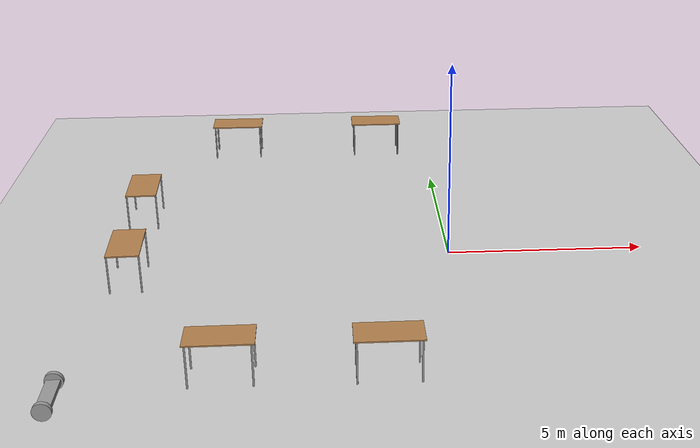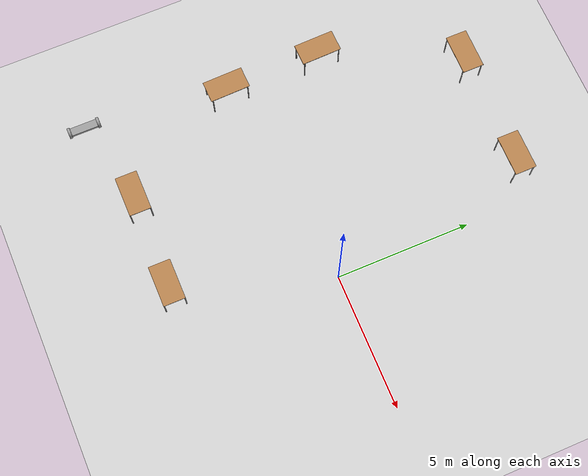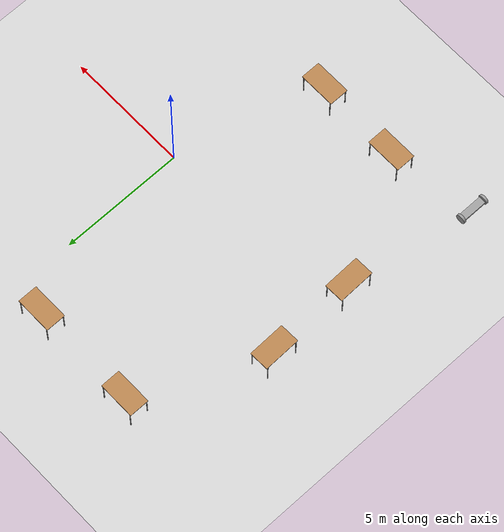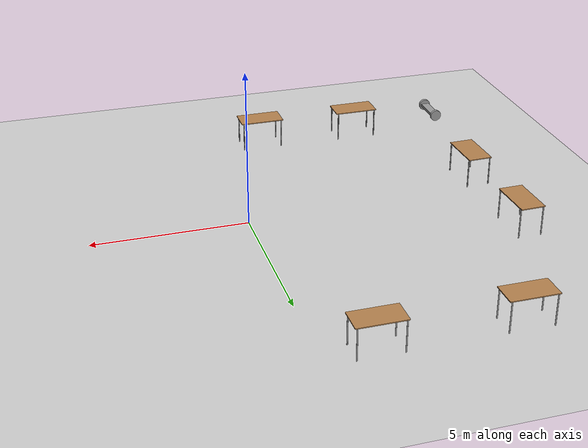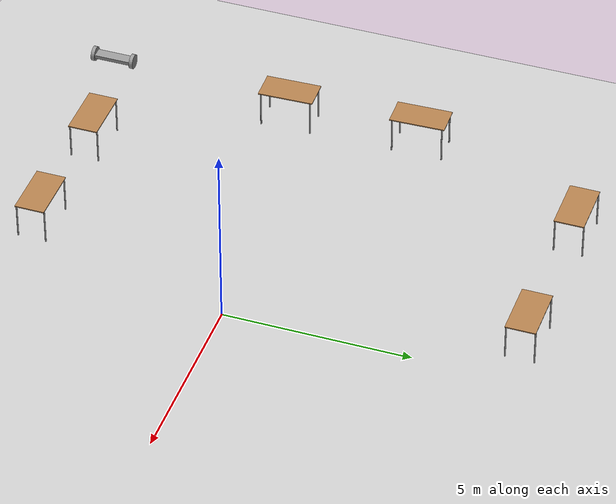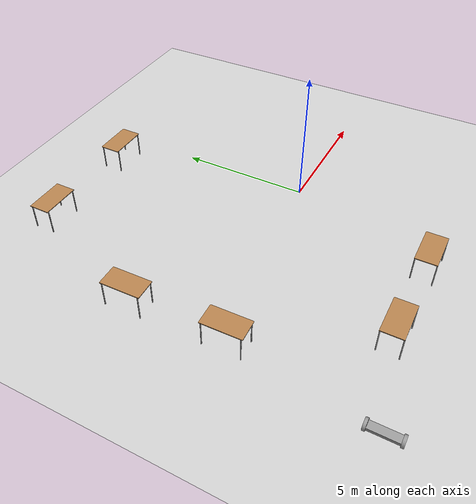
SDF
<sdf version="1.6">
 <world name="default">
  <model name="ground_plane">
   <static>1</static>
   <link name="link">
    <collision name="collision">
     <geometry><plane><normal>0 0 1</normal><size>100 100</size></plane></geometry>
     <surface>
      <contact><collide_bitmask>65535</collide_bitmask></contact>
      <friction><ode><mu>100</mu><mu2>50</mu2></ode></friction>
     </surface>
    </collision>
    <visual name="visual">
     <cast_shadows>0</cast_shadows>
     <geometry><plane><normal>0 0 1</normal><size>100 100</size></plane></geometry>
     <material>
      <script><uri>file://media/materials/scripts/gazebo.material</uri><name>Gazebo/Grey</name></script>
     </material>
    </visual>
   </link>
  </model>
  <model name="table_clone">
   <static>1</static>
   <link name="link">
    <collision name="surface">
     <pose>0 0 1 0 -0 0</pose>
     <geometry><box><size>1.5 0.8 0.03</size></box></geometry>
     <surface><friction><ode><mu>0.6</mu><mu2>0.6</mu2></ode></friction></surface>
    </collision>
    <visual name="visual1">
     <pose>0 0 1 0 -0 0</pose>
     <geometry><box><size>1.5 0.8 0.03</size></box></geometry>
     <material>
      <script><uri>file://media/materials/scripts/gazebo.material</uri><name>Gazebo/Wood</name></script>
     </material>
    </visual>
    <collision name="front_left_leg">
     <pose>0.68 0.38 0.5 0 -0 0</pose>
     <geometry><cylinder><radius>0.02</radius><length>1</length></cylinder></geometry>
    </collision>
    <visual name="front_left_leg">
     <pose>0.68 0.38 0.5 0 -0 0</pose>
     <geometry><cylinder><radius>0.02</radius><length>1</length></cylinder></geometry>
     <material>
      <script><uri>file://media/materials/scripts/gazebo.material</uri><name>Gazebo/Grey</name></script>
     </material>
    </visual>
    <collision name="front_right_leg">
     <pose>0.68 -0.38 0.5 0 -0 0</pose>
     <geometry><cylinder><radius>0.02</radius><length>1</length></cylinder></geometry>
    </collision>
    <visual name="front_right_leg">
     <pose>0.68 -0.38 0.5 0 -0 0</pose>
     <geometry><cylinder><radius>0.02</radius><length>1</length></cylinder></geometry>
     <material>
      <script><uri>file://media/materials/scripts/gazebo.material</uri><name>Gazebo/Grey</name></script>
     </material>
    </visual>
    <collision name="back_right_leg">
     <pose>-0.68 -0.38 0.5 0 -0 0</pose>
     <geometry><cylinder><radius>0.02</radius><length>1</length></cylinder></geometry>
    </collision>
    <visual name="back_right_leg">
     <pose>-0.68 -0.38 0.5 0 -0 0</pose>
     <geometry><cylinder><radius>0.02</radius><length>1</length></cylinder></geometry>
     <material>
      <script><uri>file://media/materials/scripts/gazebo.material</uri><name>Gazebo/Grey</name></script>
     </material>
    </visual>
    <collision name="back_left_leg">
     <pose>-0.68 0.38 0.5 0 -0 0</pose>
     <geometry><cylinder><radius>0.02</radius><length>1</length></cylinder></geometry>
    </collision>
    <visual name="back_left_leg">
     <pose>-0.68 0.38 0.5 0 -0 0</pose>
     <geometry><cylinder><radius>0.02</radius><length>1</length></cylinder></geometry>
     <material>
      <script><uri>file://media/materials/scripts/gazebo.material</uri><name>Gazebo/Grey</name></script>
     </material>
    </visual>
   </link>
   <pose>-1.86776 -5.62268 0 0 -0 0</pose>
  </model>
  <model name="table_clone_0">
   <static>1</static>
   <link name="link">
    <collision name="surface">
     <pose>0 0 1 0 -0 0</pose>
     <geometry><box><size>1.5 0.8 0.03</size></box></geometry>
     <surface><friction><ode><mu>0.6</mu><mu2>0.6</mu2></ode></friction></surface>
    </collision>
    <visual name="visual1">
     <pose>0 0 1 0 -0 0</pose>
     <geometry><box><size>1.5 0.8 0.03</size></box></geometry>
     <material>
      <script><uri>file://media/materials/scripts/gazebo.material</uri><name>Gazebo/Wood</name></script>
     </material>
    </visual>
    <collision name="front_left_leg">
     <pose>0.68 0.38 0.5 0 -0 0</pose>
     <geometry><cylinder><radius>0.02</radius><length>1</length></cylinder></geometry>
    </collision>
    <visual name="front_left_leg">
     <pose>0.68 0.38 0.5 0 -0 0</pose>
     <geometry><cylinder><radius>0.02</radius><length>1</length></cylinder></geometry>
     <material>
      <script><uri>file://media/materials/scripts/gazebo.material</uri><name>Gazebo/Grey</name></script>
     </material>
    </visual>
    <collision name="front_right_leg">
     <pose>0.68 -0.38 0.5 0 -0 0</pose>
     <geometry><cylinder><radius>0.02</radius><length>1</length></cylinder></geometry>
    </collision>
    <visual name="front_right_leg">
     <pose>0.68 -0.38 0.5 0 -0 0</pose>
     <geometry><cylinder><radius>0.02</radius><length>1</length></cylinder></geometry>
     <material>
      <script><uri>file://media/materials/scripts/gazebo.material</uri><name>Gazebo/Grey</name></script>
     </material>
    </visual>
    <collision name="back_right_leg">
     <pose>-0.68 -0.38 0.5 0 -0 0</pose>
     <geometry><cylinder><radius>0.02</radius><length>1</length></cylinder></geometry>
    </collision>
    <visual name="back_right_leg">
     <pose>-0.68 -0.38 0.5 0 -0 0</pose>
     <geometry><cylinder><radius>0.02</radius><length>1</length></cylinder></geometry>
     <material>
      <script><uri>file://media/materials/scripts/gazebo.material</uri><name>Gazebo/Grey</name></script>
     </material>
    </visual>
    <collision name="back_left_leg">
     <pose>-0.68 0.38 0.5 0 -0 0</pose>
     <geometry><cylinder><radius>0.02</radius><length>1</length></cylinder></geometry>
    </collision>
    <visual name="back_left_leg">
     <pose>-0.68 0.38 0.5 0 -0 0</pose>
     <geometry><cylinder><radius>0.02</radius><length>1</length></cylinder></geometry>
     <material>
      <script><uri>file://media/materials/scripts/gazebo.material</uri><name>Gazebo/Grey</name></script>
     </material>
    </visual>
   </link>
   <pose>-5.35874 -5.55545 0 0 -0 0</pose>
  </model>
  <model name="table_clone_0_clone">
   <static>1</static>
   <link name="link">
    <collision name="surface">
     <pose>0 0 1 0 -0 0</pose>
     <geometry><box><size>1.5 0.8 0.03</size></box></geometry>
     <surface><friction><ode><mu>0.6</mu><mu2>0.6</mu2></ode></friction></surface>
    </collision>
    <visual name="visual1">
     <pose>0 0 1 0 -0 0</pose>
     <geometry><box><size>1.5 0.8 0.03</size></box></geometry>
     <material>
      <script><uri>file://media/materials/scripts/gazebo.material</uri><name>Gazebo/Wood</name></script>
     </material>
    </visual>
    <collision name="front_left_leg">
     <pose>0.68 0.38 0.5 0 -0 0</pose>
     <geometry><cylinder><radius>0.02</radius><length>1</length></cylinder></geometry>
    </collision>
    <visual name="front_left_leg">
     <pose>0.68 0.38 0.5 0 -0 0</pose>
     <geometry><cylinder><radius>0.02</radius><length>1</length></cylinder></geometry>
     <material>
      <script><uri>file://media/materials/scripts/gazebo.material</uri><name>Gazebo/Grey</name></script>
     </material>
    </visual>
    <collision name="front_right_leg">
     <pose>0.68 -0.38 0.5 0 -0 0</pose>
     <geometry><cylinder><radius>0.02</radius><length>1</length></cylinder></geometry>
    </collision>
    <visual name="front_right_leg">
     <pose>0.68 -0.38 0.5 0 -0 0</pose>
     <geometry><cylinder><radius>0.02</radius><length>1</length></cylinder></geometry>
     <material>
      <script><uri>file://media/materials/scripts/gazebo.material</uri><name>Gazebo/Grey</name></script>
     </material>
    </visual>
    <collision name="back_right_leg">
     <pose>-0.68 -0.38 0.5 0 -0 0</pose>
     <geometry><cylinder><radius>0.02</radius><length>1</length></cylinder></geometry>
    </collision>
    <visual name="back_right_leg">
     <pose>-0.68 -0.38 0.5 0 -0 0</pose>
     <geometry><cylinder><radius>0.02</radius><length>1</length></cylinder></geometry>
     <material>
      <script><uri>file://media/materials/scripts/gazebo.material</uri><name>Gazebo/Grey</name></script>
     </material>
    </visual>
    <collision name="back_left_leg">
     <pose>-0.68 0.38 0.5 0 -0 0</pose>
     <geometry><cylinder><radius>0.02</radius><length>1</length></cylinder></geometry>
    </collision>
    <visual name="back_left_leg">
     <pose>-0.68 0.38 0.5 0 -0 0</pose>
     <geometry><cylinder><radius>0.02</radius><length>1</length></cylinder></geometry>
     <material>
      <script><uri>file://media/materials/scripts/gazebo.material</uri><name>Gazebo/Grey</name></script>
     </material>
    </visual>
   </link>
   <pose>-7.96209 -0.990144 0 9.2e-05 0.003589 -1.54506</pose>
  </model>
  <model name="table_clone_0_clone_clone">
   <static>1</static>
   <link name="link">
    <collision name="surface">
     <pose>0 0 1 0 -0 0</pose>
     <geometry><box><size>1.5 0.8 0.03</size></box></geometry>
     <surface><friction><ode><mu>0.6</mu><mu2>0.6</mu2></ode></friction></surface>
    </collision>
    <visual name="visual1">
     <pose>0 0 1 0 -0 0</pose>
     <geometry><box><size>1.5 0.8 0.03</size></box></geometry>
     <material>
      <script><uri>file://media/materials/scripts/gazebo.material</uri><name>Gazebo/Wood</name></script>
     </material>
    </visual>
    <collision name="front_left_leg">
     <pose>0.68 0.38 0.5 0 -0 0</pose>
     <geometry><cylinder><radius>0.02</radius><length>1</length></cylinder></geometry>
    </collision>
    <visual name="front_left_leg">
     <pose>0.68 0.38 0.5 0 -0 0</pose>
     <geometry><cylinder><radius>0.02</radius><length>1</length></cylinder></geometry>
     <material>
      <script><uri>file://media/materials/scripts/gazebo.material</uri><name>Gazebo/Grey</name></script>
     </material>
    </visual>
    <collision name="front_right_leg">
     <pose>0.68 -0.38 0.5 0 -0 0</pose>
     <geometry><cylinder><radius>0.02</radius><length>1</length></cylinder></geometry>
    </collision>
    <visual name="front_right_leg">
     <pose>0.68 -0.38 0.5 0 -0 0</pose>
     <geometry><cylinder><radius>0.02</radius><length>1</length></cylinder></geometry>
     <material>
      <script><uri>file://media/materials/scripts/gazebo.material</uri><name>Gazebo/Grey</name></script>
     </material>
    </visual>
    <collision name="back_right_leg">
     <pose>-0.68 -0.38 0.5 0 -0 0</pose>
     <geometry><cylinder><radius>0.02</radius><length>1</length></cylinder></geometry>
    </collision>
    <visual name="back_right_leg">
     <pose>-0.68 -0.38 0.5 0 -0 0</pose>
     <geometry><cylinder><radius>0.02</radius><length>1</length></cylinder></geometry>
     <material>
      <script><uri>file://media/materials/scripts/gazebo.material</uri><name>Gazebo/Grey</name></script>
     </material>
    </visual>
    <collision name="back_left_leg">
     <pose>-0.68 0.38 0.5 0 -0 0</pose>
     <geometry><cylinder><radius>0.02</radius><length>1</length></cylinder></geometry>
    </collision>
    <visual name="back_left_leg">
     <pose>-0.68 0.38 0.5 0 -0 0</pose>
     <geometry><cylinder><radius>0.02</radius><length>1</length></cylinder></geometry>
     <material>
      <script><uri>file://media/materials/scripts/gazebo.material</uri><name>Gazebo/Grey</name></script>
     </material>
    </visual>
   </link>
   <pose>-8.04147 2.63602 0 9.2e-05 0.003589 -1.54506</pose>
  </model>
  <model name="table_clone_2">
   <static>1</static>
   <link name="link">
    <collision name="surface">
     <pose>0 0 1 0 -0 0</pose>
     <geometry><box><size>1.5 0.8 0.03</size></box></geometry>
     <surface><friction><ode><mu>0.6</mu><mu2>0.6</mu2></ode></friction></surface>
    </collision>
    <visual name="visual1">
     <pose>0 0 1 0 -0 0</pose>
     <geometry><box><size>1.5 0.8 0.03</size></box></geometry>
     <material>
      <script><uri>file://media/materials/scripts/gazebo.material</uri><name>Gazebo/Wood</name></script>
     </material>
    </visual>
    <collision name="front_left_leg">
     <pose>0.68 0.38 0.5 0 -0 0</pose>
     <geometry><cylinder><radius>0.02</radius><length>1</length></cylinder></geometry>
    </collision>
    <visual name="front_left_leg">
     <pose>0.68 0.38 0.5 0 -0 0</pose>
     <geometry><cylinder><radius>0.02</radius><length>1</length></cylinder></geometry>
     <material>
      <script><uri>file://media/materials/scripts/gazebo.material</uri><name>Gazebo/Grey</name></script>
     </material>
    </visual>
    <collision name="front_right_leg">
     <pose>0.68 -0.38 0.5 0 -0 0</pose>
     <geometry><cylinder><radius>0.02</radius><length>1</length></cylinder></geometry>
    </collision>
    <visual name="front_right_leg">
     <pose>0.68 -0.38 0.5 0 -0 0</pose>
     <geometry><cylinder><radius>0.02</radius><length>1</length></cylinder></geometry>
     <material>
      <script><uri>file://media/materials/scripts/gazebo.material</uri><name>Gazebo/Grey</name></script>
     </material>
    </visual>
    <collision name="back_right_leg">
     <pose>-0.68 -0.38 0.5 0 -0 0</pose>
     <geometry><cylinder><radius>0.02</radius><length>1</length></cylinder></geometry>
    </collision>
    <visual name="back_right_leg">
     <pose>-0.68 -0.38 0.5 0 -0 0</pose>
     <geometry><cylinder><radius>0.02</radius><length>1</length></cylinder></geometry>
     <material>
      <script><uri>file://media/materials/scripts/gazebo.material</uri><name>Gazebo/Grey</name></script>
     </material>
    </visual>
    <collision name="back_left_leg">
     <pose>-0.68 0.38 0.5 0 -0 0</pose>
     <geometry><cylinder><radius>0.02</radius><length>1</length></cylinder></geometry>
    </collision>
    <visual name="back_left_leg">
     <pose>-0.68 0.38 0.5 0 -0 0</pose>
     <geometry><cylinder><radius>0.02</radius><length>1</length></cylinder></geometry>
     <material>
      <script><uri>file://media/materials/scripts/gazebo.material</uri><name>Gazebo/Grey</name></script>
     </material>
    </visual>
   </link>
   <pose>-1.51133 7.52621 0 0 -0 0</pose>
  </model>
  <model name="table_clone_2_clone">
   <static>1</static>
   <link name="link">
    <collision name="surface">
     <pose>0 0 1 0 -0 0</pose>
     <geometry><box><size>1.5 0.8 0.03</size></box></geometry>
     <surface><friction><ode><mu>0.6</mu><mu2>0.6</mu2></ode></friction></surface>
    </collision>
    <visual name="visual1">
     <pose>0 0 1 0 -0 0</pose>
     <geometry><box><size>1.5 0.8 0.03</size></box></geometry>
     <material>
      <script><uri>file://media/materials/scripts/gazebo.material</uri><name>Gazebo/Wood</name></script>
     </material>
    </visual>
    <collision name="front_left_leg">
     <pose>0.68 0.38 0.5 0 -0 0</pose>
     <geometry><cylinder><radius>0.02</radius><length>1</length></cylinder></geometry>
    </collision>
    <visual name="front_left_leg">
     <pose>0.68 0.38 0.5 0 -0 0</pose>
     <geometry><cylinder><radius>0.02</radius><length>1</length></cylinder></geometry>
     <material>
      <script><uri>file://media/materials/scripts/gazebo.material</uri><name>Gazebo/Grey</name></script>
     </material>
    </visual>
    <collision name="front_right_leg">
     <pose>0.68 -0.38 0.5 0 -0 0</pose>
     <geometry><cylinder><radius>0.02</radius><length>1</length></cylinder></geometry>
    </collision>
    <visual name="front_right_leg">
     <pose>0.68 -0.38 0.5 0 -0 0</pose>
     <geometry><cylinder><radius>0.02</radius><length>1</length></cylinder></geometry>
     <material>
      <script><uri>file://media/materials/scripts/gazebo.material</uri><name>Gazebo/Grey</name></script>
     </material>
    </visual>
    <collision name="back_right_leg">
     <pose>-0.68 -0.38 0.5 0 -0 0</pose>
     <geometry><cylinder><radius>0.02</radius><length>1</length></cylinder></geometry>
    </collision>
    <visual name="back_right_leg">
     <pose>-0.68 -0.38 0.5 0 -0 0</pose>
     <geometry><cylinder><radius>0.02</radius><length>1</length></cylinder></geometry>
     <material>
      <script><uri>file://media/materials/scripts/gazebo.material</uri><name>Gazebo/Grey</name></script>
     </material>
    </visual>
    <collision name="back_left_leg">
     <pose>-0.68 0.38 0.5 0 -0 0</pose>
     <geometry><cylinder><radius>0.02</radius><length>1</length></cylinder></geometry>
    </collision>
    <visual name="back_left_leg">
     <pose>-0.68 0.38 0.5 0 -0 0</pose>
     <geometry><cylinder><radius>0.02</radius><length>1</length></cylinder></geometry>
     <material>
      <script><uri>file://media/materials/scripts/gazebo.material</uri><name>Gazebo/Grey</name></script>
     </material>
    </visual>
   </link>
   <pose>-5.80634 7.52609 0 0 -0 0</pose>
  </model>
  <model name="wooden_car_0">
   <link name="link_1">
    <inertial>
     <mass>1</mass>
     <inertia>
      <ixx>0.166667</ixx>
      <ixy>0</ixy>
      <ixz>0</ixz>
      <iyy>0.166667</iyy>
      <iyz>0</iyz>
      <izz>0.166667</izz>
     </inertia>
    </inertial>
    <visual name="visual">
     <geometry><box><size>0.3 1 0.1</size></box></geometry>
     <material>
      <lighting>1</lighting>
      <script><uri>file://media/materials/scripts/gazebo.material</uri><name>Gazebo/Grey</name></script>
      <shader type="pixel"><normal_map>__default__</normal_map></shader>
      <ambient>0.3 0.3 0.3 1</ambient>
      <diffuse>0.7 0.7 0.7 1</diffuse>
      <specular>0.01 0.01 0.01 1</specular>
      <emissive>0 0 0 1</emissive>
     </material>
    </visual>
    <collision name="collision">
     <geometry><box><size>0.3 1 0.1</size></box></geometry>
     <surface>
      <friction>
       <ode><mu>1</mu><mu2>1</mu2><fdir1>0 0 0</fdir1><slip1>0</slip1><slip2>0</slip2></ode>
       <torsional>
        <coefficient>1</coefficient>
        <patch_radius>0</patch_radius>
        <surface_radius>0</surface_radius>
        <use_patch_radius>1</use_patch_radius>
        <ode><slip>0</slip></ode>
       </torsional>
      </friction>
      <bounce><restitution_coefficient>0</restitution_coefficient><threshold>1e+06</threshold></bounce>
      <contact>
       <collide_without_contact>0</collide_without_contact>
       <collide_without_contact_bitmask>1</collide_without_contact_bitmask>
       <collide_bitmask>1</collide_bitmask>
       <ode>
        <soft_cfm>0</soft_cfm>
        <soft_erp>0.2</soft_erp>
        <kp>1e+13</kp>
        <kd>1</kd>
        <max_vel>0.01</max_vel>
        <min_depth>0</min_depth>
       </ode>
       <bullet>
        <split_impulse>1</split_impulse>
        <split_impulse_penetration_threshold>-0.01</split_impulse_penetration_threshold>
        <soft_cfm>0</soft_cfm>
        <soft_erp>0.2</soft_erp>
        <kp>1e+13</kp>
        <kd>1</kd>
       </bullet>
      </contact>
     </surface>
    </collision>
   </link>
   <link name="link_3">
    <pose>0 -0.550019 0 1.5707 -0 0</pose>
    <inertial>
     <mass>1</mass>
     <inertia><ixx>0.145833</ixx><ixy>0</ixy><ixz>0</ixz><iyy>0.145833</iyy><iyz>0</iyz><izz>0.125</izz></inertia>
     <pose>0 0 0.2 1.5707 -0 0</pose>
    </inertial>
    <visual name="visual">
     <geometry><cylinder><radius>0.2</radius><length>0.1</length></cylinder></geometry>
     <material>
      <lighting>1</lighting>
      <script><uri>file://media/materials/scripts/gazebo.material</uri><name>Gazebo/Grey</name></script>
      <shader type="pixel"><normal_map>__default__</normal_map></shader>
      <ambient>0.3 0.3 0.3 1</ambient>
      <diffuse>0.7 0.7 0.7 1</diffuse>
      <specular>0.01 0.01 0.01 1</specular>
      <emissive>0 0 0 1</emissive>
     </material>
    </visual>
    <collision name="collision">
     <geometry><cylinder><radius>0.2</radius><length>0.1</length></cylinder></geometry>
     <surface>
      <friction>
       <ode><mu>1</mu><mu2>1</mu2><fdir1>0 0 0</fdir1><slip1>0</slip1><slip2>0</slip2></ode>
       <torsional>
        <coefficient>1</coefficient>
        <patch_radius>0</patch_radius>
        <surface_radius>0</surface_radius>
        <use_patch_radius>1</use_patch_radius>
        <ode><slip>0</slip></ode>
       </torsional>
      </friction>
      <bounce><restitution_coefficient>0</restitution_coefficient><threshold>1e+06</threshold></bounce>
      <contact>
       <collide_without_contact>0</collide_without_contact>
       <collide_without_contact_bitmask>1</collide_without_contact_bitmask>
       <collide_bitmask>1</collide_bitmask>
       <ode>
        <soft_cfm>0</soft_cfm>
        <soft_erp>0.2</soft_erp>
        <kp>1e+13</kp>
        <kd>1</kd>
        <max_vel>0.01</max_vel>
        <min_depth>0</min_depth>
       </ode>
       <bullet>
        <split_impulse>1</split_impulse>
        <split_impulse_penetration_threshold>-0.01</split_impulse_penetration_threshold>
        <soft_cfm>0</soft_cfm>
        <soft_erp>0.2</soft_erp>
        <kp>1e+13</kp>
        <kd>1</kd>
       </bullet>
      </contact>
     </surface>
    </collision>
   </link>
   <link name="link_3_clone">
    <pose>0 0.550019 0 1.5707 -0 0</pose>
    <inertial>
     <mass>1</mass>
     <inertia><ixx>0.145833</ixx><ixy>0</ixy><ixz>0</ixz><iyy>0.145833</iyy><iyz>0</iyz><izz>0.125</izz></inertia>
     <pose>0 0 0.2 1.5707 -0 0</pose>
    </inertial>
    <visual name="visual">
     <geometry><cylinder><radius>0.2</radius><length>0.1</length></cylinder></geometry>
     <material>
      <lighting>1</lighting>
      <script><uri>file://media/materials/scripts/gazebo.material</uri><name>Gazebo/Grey</name></script>
      <shader type="pixel"><normal_map>__default__</normal_map></shader>
      <ambient>0.3 0.3 0.3 1</ambient>
      <diffuse>0.7 0.7 0.7 1</diffuse>
      <specular>0.01 0.01 0.01 1</specular>
      <emissive>0 0 0 1</emissive>
     </material>
    </visual>
    <collision name="collision">
     <geometry><cylinder><radius>0.2</radius><length>0.1</length></cylinder></geometry>
     <surface>
      <friction>
       <ode><mu>1</mu><mu2>1</mu2><fdir1>0 0 0</fdir1><slip1>0</slip1><slip2>0</slip2></ode>
       <torsional>
        <coefficient>1</coefficient>
        <patch_radius>0</patch_radius>
        <surface_radius>0</surface_radius>
        <use_patch_radius>1</use_patch_radius>
        <ode><slip>0</slip></ode>
       </torsional>
      </friction>
      <bounce><restitution_coefficient>0</restitution_coefficient><threshold>1e+06</threshold></bounce>
      <contact>
       <collide_without_contact>0</collide_without_contact>
       <collide_without_contact_bitmask>1</collide_without_contact_bitmask>
       <collide_bitmask>1</collide_bitmask>
       <ode>
        <soft_cfm>0</soft_cfm>
        <soft_erp>0.2</soft_erp>
        <kp>1e+13</kp>
        <kd>1</kd>
        <max_vel>0.01</max_vel>
        <min_depth>0</min_depth>
       </ode>
       <bullet>
        <split_impulse>1</split_impulse>
        <split_impulse_penetration_threshold>-0.01</split_impulse_penetration_threshold>
        <soft_cfm>0</soft_cfm>
        <soft_erp>0.2</soft_erp>
        <kp>1e+13</kp>
        <kd>1</kd>
       </bullet>
      </contact>
     </surface>
    </collision>
   </link>
   <joint name="link_1_JOINT_0" type="revolute">
    <parent>link_1</parent>
    <child>link_3</child>
    <axis>
     <xyz>0 0 1</xyz>
     <use_parent_model_frame>0</use_parent_model_frame>
     <limit>
      <lower>-1.79769e+308</lower>
      <upper>1.79769e+308</upper>
      <effort>-1</effort>
      <velocity>-1</velocity>
     </limit>
     <dynamics>
      <spring_reference>0</spring_reference>
      <spring_stiffness>0</spring_stiffness>
      <damping>0</damping>
     </dynamics>
    </axis>
    <physics>
     <ode><limit><cfm>0</cfm><erp>0.2</erp></limit><suspension><cfm>0</cfm><erp>0.2</erp></suspension></ode>
    </physics>
   </joint>
   <joint name="link_1_JOINT_1" type="revolute">
    <parent>link_1</parent>
    <child>link_3_clone</child>
    <axis>
     <xyz>0 0 1</xyz>
     <use_parent_model_frame>0</use_parent_model_frame>
     <limit>
      <lower>-1.79769e+308</lower>
      <upper>1.79769e+308</upper>
      <effort>-1</effort>
      <velocity>-1</velocity>
     </limit>
     <dynamics>
      <spring_reference>0</spring_reference>
      <spring_stiffness>0</spring_stiffness>
      <damping>0</damping>
     </dynamics>
    </axis>
    <physics>
     <ode><limit><cfm>0</cfm><erp>0.2</erp></limit><suspension><cfm>0</cfm><erp>0.2</erp></suspension></ode>
    </physics>
   </joint>
   <static>0</static>
   <pose>-8.73917 -6.31513 0.200005 -0 -0.000185 -0.000129</pose>
  </model>
 </world>
</sdf>
